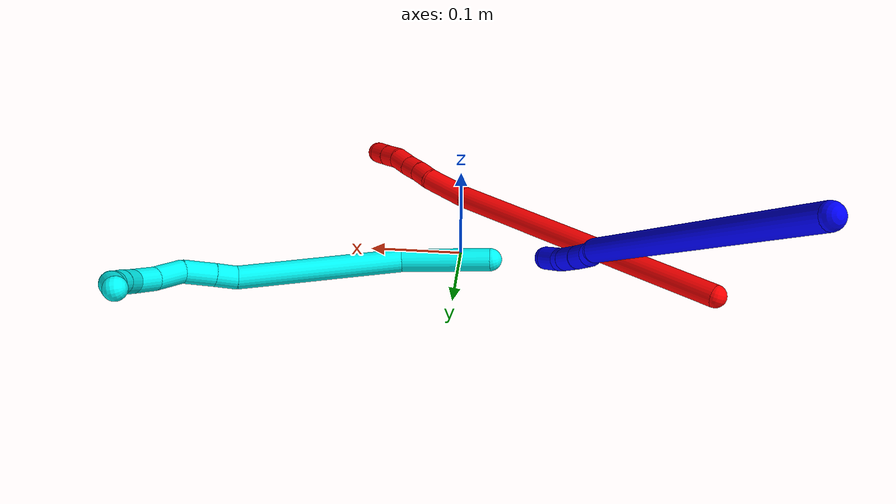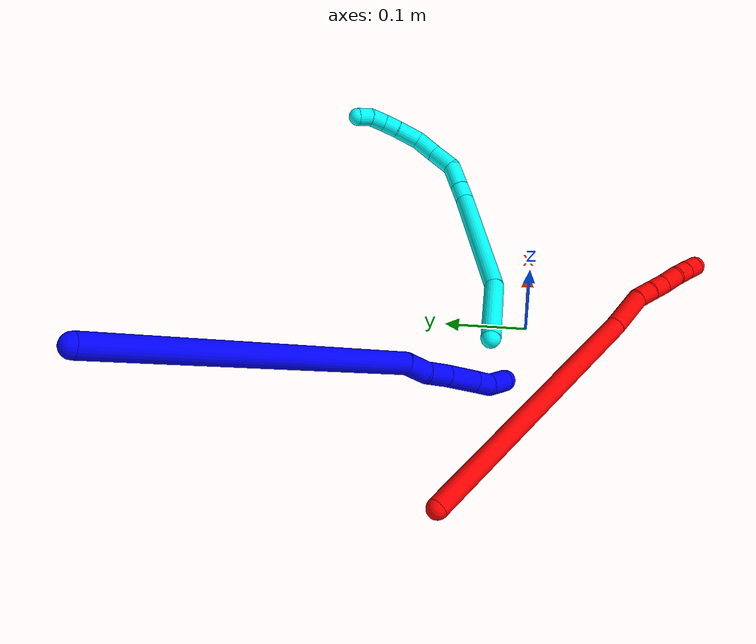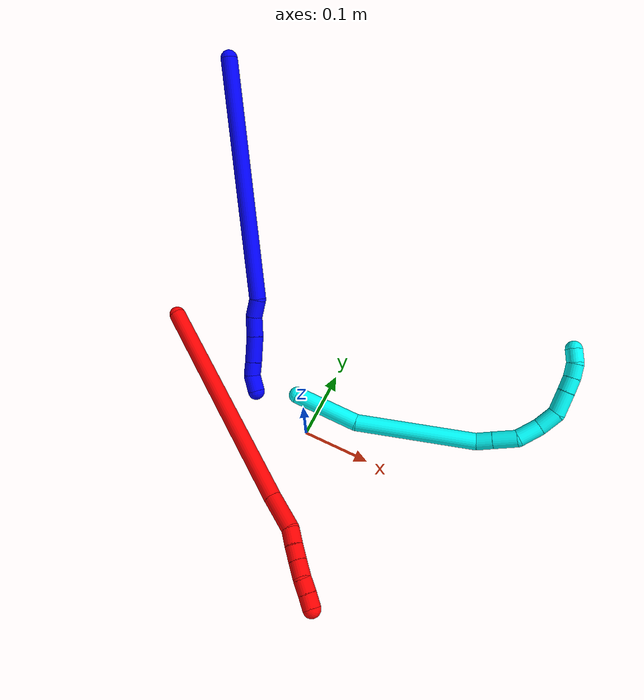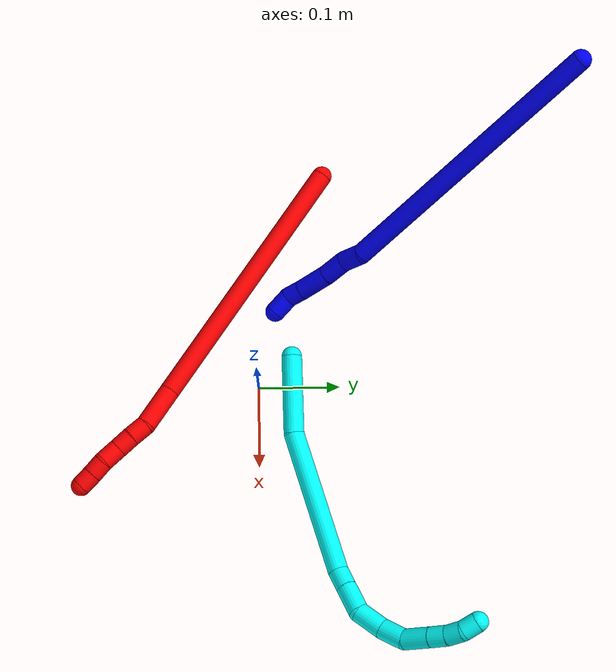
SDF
<sdf version="1.7">
 <world name="default">
  <model name="photoneo_s_sensor">
   <static>1</static>
   <pose>0 0 2 1.57079 1.57079 3.14159</pose>
   <link name="link">
    <inertial><mass>0.1</mass></inertial>
    <sensor name="sensor" type="depth">
     <update_rate>30</update_rate>
     <camera>
      <horizontal_fov>1.22</horizontal_fov>
      <image><width>1920</width><height>1200</height><format>B8G8R8</format></image>
      <clip><near>0.1</near><far>4</far></clip>
      <depth_camera><output>points</output></depth_camera>
     </camera>
     <plugin name="camera_plugin" filename="libgazebo_ros_depth_camera.so">
      <baseline>0.2</baseline>
      <alwaysOn>1</alwaysOn>
      <updateRate>0.0</updateRate>
      <cameraName>camera_ir</cameraName>
      <imageTopicName>/camera/color/image_raw</imageTopicName>
      <cameraInfoTopicName>/camera/color/camera_info</cameraInfoTopicName>
      <depthImageTopicName>/camera/depth/image_raw</depthImageTopicName>
      <depthImageCameraInfoTopicName>/camera/depth/camera_info</depthImageCameraInfoTopicName>
      <pointCloudTopicName>/camera/depth/points</pointCloudTopicName>
      <frameName>fr_optical</frameName>
      <pointCloudCutoff>0.1</pointCloudCutoff>
      <pointCloudCutoffMax>2.0</pointCloudCutoffMax>
      <distortionK1>0</distortionK1>
      <distortionK2>0</distortionK2>
      <distortionK3>0</distortionK3>
      <distortionT1>0</distortionT1>
      <distortionT2>0</distortionT2>
      <CxPrime>0</CxPrime>
      <Cx>0</Cx>
      <Cy>0</Cy>
      <focalLength>0</focalLength>
      <hackBaseline>0</hackBaseline>
     </plugin>
    </sensor>
   </link>
  </model>
  <model name="bin">
   <static>1</static>
   <link name="bottom">
    <collision name="collision-bottom">
     <pose>0 0 -0.01 0 -0 0</pose>
     <geometry><box><size>0.8 0.6 0.02</size></box></geometry>
     <surface>
      <friction><ode><mu>100</mu><mu2>100</mu2></ode></friction>
      <contact><collide_bitmask>65535</collide_bitmask></contact>
     </surface>
    </collision>
   </link>
   <link name="west_wall">
    <collision name="collision-west_wall">
     <pose>-0.41 0 0.1 0 -0 0</pose>
     <geometry><box><size>0.02 0.6 0.2</size></box></geometry>
     <surface>
      <friction><ode><mu>100</mu><mu2>100</mu2></ode></friction>
      <contact><collide_bitmask>65535</collide_bitmask></contact>
     </surface>
    </collision>
   </link>
   <link name="east_wall">
    <collision name="collision-east_wall">
     <pose>0.41 0 0.1 0 -0 0</pose>
     <geometry><box><size>0.02 0.6 0.2</size></box></geometry>
     <surface>
      <friction><ode><mu>100</mu><mu2>100</mu2></ode></friction>
      <contact><collide_bitmask>65535</collide_bitmask></contact>
     </surface>
    </collision>
   </link>
   <link name="south_wall">
    <collision name="collision-south_wall">
     <pose>0 -0.31 0.1 0 -0 0</pose>
     <geometry><box><size>0.8 0.02 0.2</size></box></geometry>
     <surface>
      <friction><ode><mu>100</mu><mu2>100</mu2></ode></friction>
      <contact><collide_bitmask>65535</collide_bitmask></contact>
     </surface>
    </collision>
   </link>
   <link name="north_wall">
    <collision name="collision-north_wall">
     <pose>0 0.31 0.1 0 -0 0</pose>
     <geometry><box><size>0.8 0.02 0.2</size></box></geometry>
     <surface>
      <friction><ode><mu>100</mu><mu2>100</mu2></ode></friction>
      <contact><collide_bitmask>65535</collide_bitmask></contact>
     </surface>
    </collision>
   </link>
  </model>
  <model name="1">
   <static>0</static>
   <link name="1">
    <collision name="collision-cylinder-e_1_1_4">
     <pose>-0.004596 0.001135 -0.178871 -3.13525 -0.025689 2.65742</pose>
     <geometry><cylinder><radius>0.0125</radius><length>0.357866</length></cylinder></geometry>
     <surface>
      <friction><ode><mu>1.16</mu><mu2>1.16</mu2><slip1>0</slip1><slip2>0</slip2></ode></friction>
      <contact><ode><kp>1e+06</kp><kd>1</kd><max_vel>0</max_vel><min_depth>0.001</min_depth></ode></contact>
     </surface>
    </collision>
    <visual name="visual-cylinder-e_1_1_4">
     <pose>-0.004596 0.001135 -0.178871 -3.13525 -0.025689 2.65742</pose>
     <geometry><cylinder><radius>0.0125</radius><length>0.357866</length></cylinder></geometry>
     <material><ambient>0 0 1 1</ambient></material>
    </visual>
    <collision name="collision-cylinder-e_2_4_5">
     <pose>-0.009905 -0.002566 -0.370569 2.78115 -0.051922 -0.28313</pose>
     <geometry><cylinder><radius>0.0125</radius><length>0.027456</length></cylinder></geometry>
     <surface>
      <friction><ode><mu>1.16</mu><mu2>1.16</mu2><slip1>0</slip1><slip2>0</slip2></ode></friction>
      <contact><ode><kp>1e+06</kp><kd>1</kd><max_vel>0</max_vel><min_depth>0.001</min_depth></ode></contact>
     </surface>
    </collision>
    <visual name="visual-cylinder-e_2_4_5">
     <pose>-0.009905 -0.002566 -0.370569 2.78115 -0.051922 -0.28313</pose>
     <geometry><cylinder><radius>0.0125</radius><length>0.027456</length></cylinder></geometry>
     <material><ambient>0 0 1 1</ambient></material>
    </visual>
    <collision name="collision-cylinder-e_3_5_6">
     <pose>-0.011227 -0.008489 -0.398178 3.06813 -0.0411 -1.01994</pose>
     <geometry><cylinder><radius>0.0125</radius><length>0.029665</length></cylinder></geometry>
     <surface>
      <friction><ode><mu>1.16</mu><mu2>1.16</mu2><slip1>0</slip1><slip2>0</slip2></ode></friction>
      <contact><ode><kp>1e+06</kp><kd>1</kd><max_vel>0</max_vel><min_depth>0.001</min_depth></ode></contact>
     </surface>
    </collision>
    <visual name="visual-cylinder-e_3_5_6">
     <pose>-0.011227 -0.008489 -0.398178 3.06813 -0.0411 -1.01994</pose>
     <geometry><cylinder><radius>0.0125</radius><length>0.029665</length></cylinder></geometry>
     <material><ambient>0 0 1 1</ambient></material>
    </visual>
    <collision name="collision-cylinder-e_4_6_7">
     <pose>-0.011521 -0.012771 -0.432223 2.97729 0.016114 0.195092</pose>
     <geometry><cylinder><radius>0.0125</radius><length>0.039061</length></cylinder></geometry>
     <surface>
      <friction><ode><mu>1.16</mu><mu2>1.16</mu2><slip1>0</slip1><slip2>0</slip2></ode></friction>
      <contact><ode><kp>1e+06</kp><kd>1</kd><max_vel>0</max_vel><min_depth>0.001</min_depth></ode></contact>
     </surface>
    </collision>
    <visual name="visual-cylinder-e_4_6_7">
     <pose>-0.011521 -0.012771 -0.432223 2.97729 0.016114 0.195092</pose>
     <geometry><cylinder><radius>0.0125</radius><length>0.039061</length></cylinder></geometry>
     <material><ambient>0 0 1 1</ambient></material>
    </visual>
    <collision name="collision-cylinder-e_5_7_8">
     <pose>-0.010749 -0.018068 -0.461751 2.93947 0.043622 0.423792</pose>
     <geometry><cylinder><radius>0.0125</radius><length>0.020972</length></cylinder></geometry>
     <surface>
      <friction><ode><mu>1.16</mu><mu2>1.16</mu2><slip1>0</slip1><slip2>0</slip2></ode></friction>
      <contact><ode><kp>1e+06</kp><kd>1</kd><max_vel>0</max_vel><min_depth>0.001</min_depth></ode></contact>
     </surface>
    </collision>
    <visual name="visual-cylinder-e_5_7_8">
     <pose>-0.010749 -0.018068 -0.461751 2.93947 0.043622 0.423792</pose>
     <geometry><cylinder><radius>0.0125</radius><length>0.020972</length></cylinder></geometry>
     <material><ambient>0 0 1 1</ambient></material>
    </visual>
    <collision name="collision-cylinder-e_6_8_2">
     <pose>-0.009274 -0.017582 -0.48419 -2.9321 0.081609 -0.740845</pose>
     <geometry><cylinder><radius>0.0125</radius><length>0.024979</length></cylinder></geometry>
     <surface>
      <friction><ode><mu>1.16</mu><mu2>1.16</mu2><slip1>0</slip1><slip2>0</slip2></ode></friction>
      <contact><ode><kp>1e+06</kp><kd>1</kd><max_vel>0</max_vel><min_depth>0.001</min_depth></ode></contact>
     </surface>
    </collision>
    <visual name="visual-cylinder-e_6_8_2">
     <pose>-0.009274 -0.017582 -0.48419 -2.9321 0.081609 -0.740845</pose>
     <geometry><cylinder><radius>0.0125</radius><length>0.024979</length></cylinder></geometry>
     <material><ambient>0 0 1 1</ambient></material>
    </visual>
    <collision name="collision-sphere-2">
     <pose>-0.008256 -0.014993 -0.496366 0 -0 0</pose>
     <geometry><sphere><radius>0.0125</radius></sphere></geometry>
     <surface>
      <friction><ode><mu>1.16</mu><mu2>1.16</mu2><slip1>0</slip1><slip2>0</slip2></ode></friction>
      <contact><ode><kp>1e+06</kp><kd>1</kd><max_vel>0</max_vel><min_depth>0.001</min_depth></ode></contact>
     </surface>
    </collision>
    <visual name="visual-sphere-2">
     <pose>-0.008256 -0.014993 -0.496366 0 -0 0</pose>
     <geometry><sphere><radius>0.0125</radius></sphere></geometry>
     <material><ambient>0 0 1 1</ambient></material>
    </visual>
    <collision name="collision-sphere-4">
     <pose>-0.009192 0.002269 -0.357741 0 -0 0</pose>
     <geometry><sphere><radius>0.0125</radius></sphere></geometry>
     <surface>
      <friction><ode><mu>1.16</mu><mu2>1.16</mu2><slip1>0</slip1><slip2>0</slip2></ode></friction>
      <contact><ode><kp>1e+06</kp><kd>1</kd><max_vel>0</max_vel><min_depth>0.001</min_depth></ode></contact>
     </surface>
    </collision>
    <visual name="visual-sphere-4">
     <pose>-0.009192 0.002269 -0.357741 0 -0 0</pose>
     <geometry><sphere><radius>0.0125</radius></sphere></geometry>
     <material><ambient>0 0 1 1</ambient></material>
    </visual>
    <collision name="collision-sphere-1">
     <geometry><sphere><radius>0.0125</radius></sphere></geometry>
     <surface>
      <friction><ode><mu>1.16</mu><mu2>1.16</mu2><slip1>0</slip1><slip2>0</slip2></ode></friction>
      <contact><ode><kp>1e+06</kp><kd>1</kd><max_vel>0</max_vel><min_depth>0.001</min_depth></ode></contact>
     </surface>
    </collision>
    <visual name="visual-sphere-1">
     <geometry><sphere><radius>0.0125</radius></sphere></geometry>
     <material><ambient>0 0 1 1</ambient></material>
    </visual>
    <collision name="collision-sphere-8">
     <pose>-0.010292 -0.020171 -0.472014 0 -0 0</pose>
     <geometry><sphere><radius>0.0125</radius></sphere></geometry>
     <surface>
      <friction><ode><mu>1.16</mu><mu2>1.16</mu2><slip1>0</slip1><slip2>0</slip2></ode></friction>
      <contact><ode><kp>1e+06</kp><kd>1</kd><max_vel>0</max_vel><min_depth>0.001</min_depth></ode></contact>
     </surface>
    </collision>
    <visual name="visual-sphere-8">
     <pose>-0.010292 -0.020171 -0.472014 0 -0 0</pose>
     <geometry><sphere><radius>0.0125</radius></sphere></geometry>
     <material><ambient>0 0 1 1</ambient></material>
    </visual>
    <collision name="collision-sphere-5">
     <pose>-0.010617 -0.007401 -0.383398 0 -0 0</pose>
     <geometry><sphere><radius>0.0125</radius></sphere></geometry>
     <surface>
      <friction><ode><mu>1.16</mu><mu2>1.16</mu2><slip1>0</slip1><slip2>0</slip2></ode></friction>
      <contact><ode><kp>1e+06</kp><kd>1</kd><max_vel>0</max_vel><min_depth>0.001</min_depth></ode></contact>
     </surface>
    </collision>
    <visual name="visual-sphere-5">
     <pose>-0.010617 -0.007401 -0.383398 0 -0 0</pose>
     <geometry><sphere><radius>0.0125</radius></sphere></geometry>
     <material><ambient>0 0 1 1</ambient></material>
    </visual>
    <collision name="collision-sphere-6">
     <pose>-0.011836 -0.009576 -0.412958 0 -0 0</pose>
     <geometry><sphere><radius>0.0125</radius></sphere></geometry>
     <surface>
      <friction><ode><mu>1.16</mu><mu2>1.16</mu2><slip1>0</slip1><slip2>0</slip2></ode></friction>
      <contact><ode><kp>1e+06</kp><kd>1</kd><max_vel>0</max_vel><min_depth>0.001</min_depth></ode></contact>
     </surface>
    </collision>
    <visual name="visual-sphere-6">
     <pose>-0.011836 -0.009576 -0.412958 0 -0 0</pose>
     <geometry><sphere><radius>0.0125</radius></sphere></geometry>
     <material><ambient>0 0 1 1</ambient></material>
    </visual>
    <collision name="collision-sphere-7">
     <pose>-0.011207 -0.015965 -0.451489 0 -0 0</pose>
     <geometry><sphere><radius>0.0125</radius></sphere></geometry>
     <surface>
      <friction><ode><mu>1.16</mu><mu2>1.16</mu2><slip1>0</slip1><slip2>0</slip2></ode></friction>
      <contact><ode><kp>1e+06</kp><kd>1</kd><max_vel>0</max_vel><min_depth>0.001</min_depth></ode></contact>
     </surface>
    </collision>
    <visual name="visual-sphere-7">
     <pose>-0.011207 -0.015965 -0.451489 0 -0 0</pose>
     <geometry><sphere><radius>0.0125</radius></sphere></geometry>
     <material><ambient>0 0 1 1</ambient></material>
    </visual>
    <inertial>
     <pose>-0.006314 -0.002466 -0.24932 0 -0 0</pose>
     <mass>0.5</mass>
     <inertia>
      <ixx>-0.001598</ixx>
      <ixy>0</ixy>
      <ixz>0</ixz>
      <iyy>0.005159</iyy>
      <iyz>0</iyz>
      <izz>3.7e-05</izz>
     </inertia>
    </inertial>
   </link>
   <pose>-0.314417 0.381434 0.274968 0.559325 -0.928527 -1.66233</pose>
  </model>
  <model name="2">
   <static>0</static>
   <link name="2">
    <collision name="collision-cylinder-e_1_1_4">
     <pose>0.137493 -0.098768 -0.004996 1.62133 0.947257 0.988901</pose>
     <geometry><cylinder><radius>0.0125</radius><length>0.338729</length></cylinder></geometry>
     <surface>
      <friction><ode><mu>1.16</mu><mu2>1.16</mu2><slip1>0</slip1><slip2>0</slip2></ode></friction>
      <contact><ode><kp>1e+06</kp><kd>1</kd><max_vel>0</max_vel><min_depth>0.001</min_depth></ode></contact>
     </surface>
    </collision>
    <visual name="visual-cylinder-e_1_1_4">
     <pose>0.137493 -0.098768 -0.004996 1.62133 0.947257 0.988901</pose>
     <geometry><cylinder><radius>0.0125</radius><length>0.338729</length></cylinder></geometry>
     <material><ambient>1 0 0 1</ambient></material>
    </visual>
    <collision name="collision-cylinder-e_2_4_5">
     <pose>0.297599 -0.21104 -0.008042 1.42745 1.02789 0.90948</pose>
     <geometry><cylinder><radius>0.0125</radius><length>0.05282</length></cylinder></geometry>
     <surface>
      <friction><ode><mu>1.16</mu><mu2>1.16</mu2><slip1>0</slip1><slip2>0</slip2></ode></friction>
      <contact><ode><kp>1e+06</kp><kd>1</kd><max_vel>0</max_vel><min_depth>0.001</min_depth></ode></contact>
     </surface>
    </collision>
    <visual name="visual-cylinder-e_2_4_5">
     <pose>0.297599 -0.21104 -0.008042 1.42745 1.02789 0.90948</pose>
     <geometry><cylinder><radius>0.0125</radius><length>0.05282</length></cylinder></geometry>
     <material><ambient>1 0 0 1</ambient></material>
    </visual>
    <collision name="collision-cylinder-e_3_5_6">
     <pose>0.327749 -0.233285 -0.004858 1.43046 0.706718 0.620126</pose>
     <geometry><cylinder><radius>0.0125</radius><length>0.023216</length></cylinder></geometry>
     <surface>
      <friction><ode><mu>1.16</mu><mu2>1.16</mu2><slip1>0</slip1><slip2>0</slip2></ode></friction>
      <contact><ode><kp>1e+06</kp><kd>1</kd><max_vel>0</max_vel><min_depth>0.001</min_depth></ode></contact>
     </surface>
    </collision>
    <visual name="visual-cylinder-e_3_5_6">
     <pose>0.327749 -0.233285 -0.004858 1.43046 0.706718 0.620126</pose>
     <geometry><cylinder><radius>0.0125</radius><length>0.023216</length></cylinder></geometry>
     <material><ambient>1 0 0 1</ambient></material>
    </visual>
    <collision name="collision-cylinder-e_4_6_7">
     <pose>0.342283 -0.250117 -0.003264 1.52644 0.712513 0.683994</pose>
     <geometry><cylinder><radius>0.0125</radius><length>0.021406</length></cylinder></geometry>
     <surface>
      <friction><ode><mu>1.16</mu><mu2>1.16</mu2><slip1>0</slip1><slip2>0</slip2></ode></friction>
      <contact><ode><kp>1e+06</kp><kd>1</kd><max_vel>0</max_vel><min_depth>0.001</min_depth></ode></contact>
     </surface>
    </collision>
    <visual name="visual-cylinder-e_4_6_7">
     <pose>0.342283 -0.250117 -0.003264 1.52644 0.712513 0.683994</pose>
     <geometry><cylinder><radius>0.0125</radius><length>0.021406</length></cylinder></geometry>
     <material><ambient>1 0 0 1</ambient></material>
    </visual>
    <collision name="collision-cylinder-e_5_7_8">
     <pose>0.357503 -0.266652 -0.001438 1.39878 0.764711 0.652435</pose>
     <geometry><cylinder><radius>0.0125</radius><length>0.023755</length></cylinder></geometry>
     <surface>
      <friction><ode><mu>1.16</mu><mu2>1.16</mu2><slip1>0</slip1><slip2>0</slip2></ode></friction>
      <contact><ode><kp>1e+06</kp><kd>1</kd><max_vel>0</max_vel><min_depth>0.001</min_depth></ode></contact>
     </surface>
    </collision>
    <visual name="visual-cylinder-e_5_7_8">
     <pose>0.357503 -0.266652 -0.001438 1.39878 0.764711 0.652435</pose>
     <geometry><cylinder><radius>0.0125</radius><length>0.023755</length></cylinder></geometry>
     <material><ambient>1 0 0 1</ambient></material>
    </visual>
    <collision name="collision-cylinder-e_6_8_9">
     <pose>0.372372 -0.28247 -0.001247 1.74215 0.726235 0.847982</pose>
     <geometry><cylinder><radius>0.0125</radius><length>0.020017</length></cylinder></geometry>
     <surface>
      <friction><ode><mu>1.16</mu><mu2>1.16</mu2><slip1>0</slip1><slip2>0</slip2></ode></friction>
      <contact><ode><kp>1e+06</kp><kd>1</kd><max_vel>0</max_vel><min_depth>0.001</min_depth></ode></contact>
     </surface>
    </collision>
    <visual name="visual-cylinder-e_6_8_9">
     <pose>0.372372 -0.28247 -0.001247 1.74215 0.726235 0.847982</pose>
     <geometry><cylinder><radius>0.0125</radius><length>0.020017</length></cylinder></geometry>
     <material><ambient>1 0 0 1</ambient></material>
    </visual>
    <collision name="collision-cylinder-e_7_9_2">
     <pose>0.385453 -0.297471 -0.003517 1.70039 0.696657 0.784232</pose>
     <geometry><cylinder><radius>0.0125</radius><length>0.020058</length></cylinder></geometry>
     <surface>
      <friction><ode><mu>1.16</mu><mu2>1.16</mu2><slip1>0</slip1><slip2>0</slip2></ode></friction>
      <contact><ode><kp>1e+06</kp><kd>1</kd><max_vel>0</max_vel><min_depth>0.001</min_depth></ode></contact>
     </surface>
    </collision>
    <visual name="visual-cylinder-e_7_9_2">
     <pose>0.385453 -0.297471 -0.003517 1.70039 0.696657 0.784232</pose>
     <geometry><cylinder><radius>0.0125</radius><length>0.020058</length></cylinder></geometry>
     <material><ambient>1 0 0 1</ambient></material>
    </visual>
    <collision name="collision-sphere-2">
     <pose>0.391888 -0.305098 -0.004511 0 -0 0</pose>
     <geometry><sphere><radius>0.0125</radius></sphere></geometry>
     <surface>
      <friction><ode><mu>1.16</mu><mu2>1.16</mu2><slip1>0</slip1><slip2>0</slip2></ode></friction>
      <contact><ode><kp>1e+06</kp><kd>1</kd><max_vel>0</max_vel><min_depth>0.001</min_depth></ode></contact>
     </surface>
    </collision>
    <visual name="visual-sphere-2">
     <pose>0.391888 -0.305098 -0.004511 0 -0 0</pose>
     <geometry><sphere><radius>0.0125</radius></sphere></geometry>
     <material><ambient>1 0 0 1</ambient></material>
    </visual>
    <collision name="collision-sphere-9">
     <pose>0.379018 -0.289843 -0.002523 0 -0 0</pose>
     <geometry><sphere><radius>0.0125</radius></sphere></geometry>
     <surface>
      <friction><ode><mu>1.16</mu><mu2>1.16</mu2><slip1>0</slip1><slip2>0</slip2></ode></friction>
      <contact><ode><kp>1e+06</kp><kd>1</kd><max_vel>0</max_vel><min_depth>0.001</min_depth></ode></contact>
     </surface>
    </collision>
    <visual name="visual-sphere-9">
     <pose>0.379018 -0.289843 -0.002523 0 -0 0</pose>
     <geometry><sphere><radius>0.0125</radius></sphere></geometry>
     <material><ambient>1 0 0 1</ambient></material>
    </visual>
    <collision name="collision-sphere-4">
     <pose>0.274986 -0.197536 -0.009991 0 -0 0</pose>
     <geometry><sphere><radius>0.0125</radius></sphere></geometry>
     <surface>
      <friction><ode><mu>1.16</mu><mu2>1.16</mu2><slip1>0</slip1><slip2>0</slip2></ode></friction>
      <contact><ode><kp>1e+06</kp><kd>1</kd><max_vel>0</max_vel><min_depth>0.001</min_depth></ode></contact>
     </surface>
    </collision>
    <visual name="visual-sphere-4">
     <pose>0.274986 -0.197536 -0.009991 0 -0 0</pose>
     <geometry><sphere><radius>0.0125</radius></sphere></geometry>
     <material><ambient>1 0 0 1</ambient></material>
    </visual>
    <collision name="collision-sphere-1">
     <geometry><sphere><radius>0.0125</radius></sphere></geometry>
     <surface>
      <friction><ode><mu>1.16</mu><mu2>1.16</mu2><slip1>0</slip1><slip2>0</slip2></ode></friction>
      <contact><ode><kp>1e+06</kp><kd>1</kd><max_vel>0</max_vel><min_depth>0.001</min_depth></ode></contact>
     </surface>
    </collision>
    <visual name="visual-sphere-1">
     <geometry><sphere><radius>0.0125</radius></sphere></geometry>
     <material><ambient>1 0 0 1</ambient></material>
    </visual>
    <collision name="collision-sphere-8">
     <pose>0.365726 -0.275096 2.9e-05 0 -0 0</pose>
     <geometry><sphere><radius>0.0125</radius></sphere></geometry>
     <surface>
      <friction><ode><mu>1.16</mu><mu2>1.16</mu2><slip1>0</slip1><slip2>0</slip2></ode></friction>
      <contact><ode><kp>1e+06</kp><kd>1</kd><max_vel>0</max_vel><min_depth>0.001</min_depth></ode></contact>
     </surface>
    </collision>
    <visual name="visual-sphere-8">
     <pose>0.365726 -0.275096 2.9e-05 0 -0 0</pose>
     <geometry><sphere><radius>0.0125</radius></sphere></geometry>
     <material><ambient>1 0 0 1</ambient></material>
    </visual>
    <collision name="collision-sphere-5">
     <pose>0.320211 -0.224544 -0.006093 0 -0 0</pose>
     <geometry><sphere><radius>0.0125</radius></sphere></geometry>
     <surface>
      <friction><ode><mu>1.16</mu><mu2>1.16</mu2><slip1>0</slip1><slip2>0</slip2></ode></friction>
      <contact><ode><kp>1e+06</kp><kd>1</kd><max_vel>0</max_vel><min_depth>0.001</min_depth></ode></contact>
     </surface>
    </collision>
    <visual name="visual-sphere-5">
     <pose>0.320211 -0.224544 -0.006093 0 -0 0</pose>
     <geometry><sphere><radius>0.0125</radius></sphere></geometry>
     <material><ambient>1 0 0 1</ambient></material>
    </visual>
    <collision name="collision-sphere-6">
     <pose>0.335286 -0.242026 -0.003624 0 -0 0</pose>
     <geometry><sphere><radius>0.0125</radius></sphere></geometry>
     <surface>
      <friction><ode><mu>1.16</mu><mu2>1.16</mu2><slip1>0</slip1><slip2>0</slip2></ode></friction>
      <contact><ode><kp>1e+06</kp><kd>1</kd><max_vel>0</max_vel><min_depth>0.001</min_depth></ode></contact>
     </surface>
    </collision>
    <visual name="visual-sphere-6">
     <pose>0.335286 -0.242026 -0.003624 0 -0 0</pose>
     <geometry><sphere><radius>0.0125</radius></sphere></geometry>
     <material><ambient>1 0 0 1</ambient></material>
    </visual>
    <collision name="collision-sphere-7">
     <pose>0.34928 -0.258208 -0.002905 0 -0 0</pose>
     <geometry><sphere><radius>0.0125</radius></sphere></geometry>
     <surface>
      <friction><ode><mu>1.16</mu><mu2>1.16</mu2><slip1>0</slip1><slip2>0</slip2></ode></friction>
      <contact><ode><kp>1e+06</kp><kd>1</kd><max_vel>0</max_vel><min_depth>0.001</min_depth></ode></contact>
     </surface>
    </collision>
    <visual name="visual-sphere-7">
     <pose>0.34928 -0.258208 -0.002905 0 -0 0</pose>
     <geometry><sphere><radius>0.0125</radius></sphere></geometry>
     <material><ambient>1 0 0 1</ambient></material>
    </visual>
    <inertial>
     <pose>0.201811 -0.146655 -0.004859 0 -0 0</pose>
     <mass>0.5</mass>
     <inertia><ixx>0.00268</ixx><ixy>0</ixy><ixz>0</ixz><iyy>0.0037</iyy><iyz>0</iyz><izz>-0.000748</izz></inertia>
    </inertial>
   </link>
   <pose>-0.274436 0.082087 0.011499 0.383127 -0.293484 -0.043976</pose>
  </model>
  <model name="3">
   <static>0</static>
   <link name="3">
    <collision name="collision-cylinder-e_1_1_4">
     <pose>0.003301 0.005956 0.048048 -0.12334 0.068072 -0.004205</pose>
     <geometry><cylinder><radius>0.0125</radius><length>0.097057</length></cylinder></geometry>
     <surface>
      <friction><ode><mu>1.16</mu><mu2>1.16</mu2><slip1>0</slip1><slip2>0</slip2></ode></friction>
      <contact><ode><kp>1e+06</kp><kd>1</kd><max_vel>0</max_vel><min_depth>0.001</min_depth></ode></contact>
     </surface>
    </collision>
    <visual name="visual-cylinder-e_1_1_4">
     <pose>0.003301 0.005956 0.048048 -0.12334 0.068072 -0.004205</pose>
     <geometry><cylinder><radius>0.0125</radius><length>0.097057</length></cylinder></geometry>
     <material><ambient>0.003922 1 0.996078 1</ambient></material>
    </visual>
    <collision name="collision-cylinder-e_2_4_5">
     <pose>0.033647 0.009566 0.181059 0.027616 0.308064 0.004288</pose>
     <geometry><cylinder><radius>0.0125</radius><length>0.178389</length></cylinder></geometry>
     <surface>
      <friction><ode><mu>1.16</mu><mu2>1.16</mu2><slip1>0</slip1><slip2>0</slip2></ode></friction>
      <contact><ode><kp>1e+06</kp><kd>1</kd><max_vel>0</max_vel><min_depth>0.001</min_depth></ode></contact>
     </surface>
    </collision>
    <visual name="visual-cylinder-e_2_4_5">
     <pose>0.033647 0.009566 0.181059 0.027616 0.308064 0.004288</pose>
     <geometry><cylinder><radius>0.0125</radius><length>0.178389</length></cylinder></geometry>
     <material><ambient>0.003922 1 0.996078 1</ambient></material>
    </visual>
    <collision name="collision-cylinder-e_3_5_6">
     <pose>0.067952 0.008804 0.275861 -0.159735 0.629638 -0.052117</pose>
     <geometry><cylinder><radius>0.0125</radius><length>0.02466</length></cylinder></geometry>
     <surface>
      <friction><ode><mu>1.16</mu><mu2>1.16</mu2><slip1>0</slip1><slip2>0</slip2></ode></friction>
      <contact><ode><kp>1e+06</kp><kd>1</kd><max_vel>0</max_vel><min_depth>0.001</min_depth></ode></contact>
     </surface>
    </collision>
    <visual name="visual-cylinder-e_3_5_6">
     <pose>0.067952 0.008804 0.275861 -0.159735 0.629638 -0.052117</pose>
     <geometry><cylinder><radius>0.0125</radius><length>0.02466</length></cylinder></geometry>
     <material><ambient>0.003922 1 0.996078 1</ambient></material>
    </visual>
    <collision name="collision-cylinder-e_4_6_7">
     <pose>0.085364 0.012384 0.299953 -0.139027 0.614271 -0.044159</pose>
     <geometry><cylinder><radius>0.0125</radius><length>0.035223</length></cylinder></geometry>
     <surface>
      <friction><ode><mu>1.16</mu><mu2>1.16</mu2><slip1>0</slip1><slip2>0</slip2></ode></friction>
      <contact><ode><kp>1e+06</kp><kd>1</kd><max_vel>0</max_vel><min_depth>0.001</min_depth></ode></contact>
     </surface>
    </collision>
    <visual name="visual-cylinder-e_4_6_7">
     <pose>0.085364 0.012384 0.299953 -0.139027 0.614271 -0.044159</pose>
     <geometry><cylinder><radius>0.0125</radius><length>0.035223</length></cylinder></geometry>
     <material><ambient>0.003922 1 0.996078 1</ambient></material>
    </visual>
    <collision name="collision-cylinder-e_5_7_8">
     <pose>0.108814 0.009458 0.324703 0.438315 0.853849 0.201957</pose>
     <geometry><cylinder><radius>0.0125</radius><length>0.035287</length></cylinder></geometry>
     <surface>
      <friction><ode><mu>1.16</mu><mu2>1.16</mu2><slip1>0</slip1><slip2>0</slip2></ode></friction>
      <contact><ode><kp>1e+06</kp><kd>1</kd><max_vel>0</max_vel><min_depth>0.001</min_depth></ode></contact>
     </surface>
    </collision>
    <visual name="visual-cylinder-e_5_7_8">
     <pose>0.108814 0.009458 0.324703 0.438315 0.853849 0.201957</pose>
     <geometry><cylinder><radius>0.0125</radius><length>0.035287</length></cylinder></geometry>
     <material><ambient>0.003922 1 0.996078 1</ambient></material>
    </visual>
    <collision name="collision-cylinder-e_6_8_9">
     <pose>0.13602 0.001541 0.341856 0.423115 1.08745 0.258216</pose>
     <geometry><cylinder><radius>0.0125</radius><length>0.031409</length></cylinder></geometry>
     <surface>
      <friction><ode><mu>1.16</mu><mu2>1.16</mu2><slip1>0</slip1><slip2>0</slip2></ode></friction>
      <contact><ode><kp>1e+06</kp><kd>1</kd><max_vel>0</max_vel><min_depth>0.001</min_depth></ode></contact>
     </surface>
    </collision>
    <visual name="visual-cylinder-e_6_8_9">
     <pose>0.13602 0.001541 0.341856 0.423115 1.08745 0.258216</pose>
     <geometry><cylinder><radius>0.0125</radius><length>0.031409</length></cylinder></geometry>
     <material><ambient>0.003922 1 0.996078 1</ambient></material>
    </visual>
    <collision name="collision-cylinder-e_7_9_10">
     <pose>0.166862 -0.005062 0.347535 1.83494 1.3537 1.61922</pose>
     <geometry><cylinder><radius>0.0125</radius><length>0.034687</length></cylinder></geometry>
     <surface>
      <friction><ode><mu>1.16</mu><mu2>1.16</mu2><slip1>0</slip1><slip2>0</slip2></ode></friction>
      <contact><ode><kp>1e+06</kp><kd>1</kd><max_vel>0</max_vel><min_depth>0.001</min_depth></ode></contact>
     </surface>
    </collision>
    <visual name="visual-cylinder-e_7_9_10">
     <pose>0.166862 -0.005062 0.347535 1.83494 1.3537 1.61922</pose>
     <geometry><cylinder><radius>0.0125</radius><length>0.034687</length></cylinder></geometry>
     <material><ambient>0.003922 1 0.996078 1</ambient></material>
    </visual>
    <collision name="collision-cylinder-e_8_10_11">
     <pose>0.194413 -0.01143 0.345846 1.82393 1.30829 1.5611</pose>
     <geometry><cylinder><radius>0.0125</radius><length>0.021983</length></cylinder></geometry>
     <surface>
      <friction><ode><mu>1.16</mu><mu2>1.16</mu2><slip1>0</slip1><slip2>0</slip2></ode></friction>
      <contact><ode><kp>1e+06</kp><kd>1</kd><max_vel>0</max_vel><min_depth>0.001</min_depth></ode></contact>
     </surface>
    </collision>
    <visual name="visual-cylinder-e_8_10_11">
     <pose>0.194413 -0.01143 0.345846 1.82393 1.30829 1.5611</pose>
     <geometry><cylinder><radius>0.0125</radius><length>0.021983</length></cylinder></geometry>
     <material><ambient>0.003922 1 0.996078 1</ambient></material>
    </visual>
    <collision name="collision-cylinder-e_9_11_12">
     <pose>0.215039 -0.016379 0.342605 2.42802 1.24861 2.18667</pose>
     <geometry><cylinder><radius>0.0125</radius><length>0.021108</length></cylinder></geometry>
     <surface>
      <friction><ode><mu>1.16</mu><mu2>1.16</mu2><slip1>0</slip1><slip2>0</slip2></ode></friction>
      <contact><ode><kp>1e+06</kp><kd>1</kd><max_vel>0</max_vel><min_depth>0.001</min_depth></ode></contact>
     </surface>
    </collision>
    <visual name="visual-cylinder-e_9_11_12">
     <pose>0.215039 -0.016379 0.342605 2.42802 1.24861 2.18667</pose>
     <geometry><cylinder><radius>0.0125</radius><length>0.021108</length></cylinder></geometry>
     <material><ambient>0.003922 1 0.996078 1</ambient></material>
    </visual>
    <collision name="collision-cylinder-e_10_12_2">
     <pose>0.232789 -0.023035 0.335376 2.38172 0.87319 1.7259</pose>
     <geometry><cylinder><radius>0.0125</radius><length>0.020198</length></cylinder></geometry>
     <surface>
      <friction><ode><mu>1.16</mu><mu2>1.16</mu2><slip1>0</slip1><slip2>0</slip2></ode></friction>
      <contact><ode><kp>1e+06</kp><kd>1</kd><max_vel>0</max_vel><min_depth>0.001</min_depth></ode></contact>
     </surface>
    </collision>
    <visual name="visual-cylinder-e_10_12_2">
     <pose>0.232789 -0.023035 0.335376 2.38172 0.87319 1.7259</pose>
     <geometry><cylinder><radius>0.0125</radius><length>0.020198</length></cylinder></geometry>
     <material><ambient>0.003922 1 0.996078 1</ambient></material>
    </visual>
    <collision name="collision-sphere-2">
     <pose>0.240528 -0.027503 0.330673 0 -0 0</pose>
     <geometry><sphere><radius>0.0125</radius></sphere></geometry>
     <surface>
      <friction><ode><mu>1.16</mu><mu2>1.16</mu2><slip1>0</slip1><slip2>0</slip2></ode></friction>
      <contact><ode><kp>1e+06</kp><kd>1</kd><max_vel>0</max_vel><min_depth>0.001</min_depth></ode></contact>
     </surface>
    </collision>
    <visual name="visual-sphere-2">
     <pose>0.240528 -0.027503 0.330673 0 -0 0</pose>
     <geometry><sphere><radius>0.0125</radius></sphere></geometry>
     <material><ambient>0.003922 1 0.996078 1</ambient></material>
    </visual>
    <collision name="collision-sphere-12">
     <pose>0.225049 -0.018566 0.340078 0 -0 0</pose>
     <geometry><sphere><radius>0.0125</radius></sphere></geometry>
     <surface>
      <friction><ode><mu>1.16</mu><mu2>1.16</mu2><slip1>0</slip1><slip2>0</slip2></ode></friction>
      <contact><ode><kp>1e+06</kp><kd>1</kd><max_vel>0</max_vel><min_depth>0.001</min_depth></ode></contact>
     </surface>
    </collision>
    <visual name="visual-sphere-12">
     <pose>0.225049 -0.018566 0.340078 0 -0 0</pose>
     <geometry><sphere><radius>0.0125</radius></sphere></geometry>
     <material><ambient>0.003922 1 0.996078 1</ambient></material>
    </visual>
    <collision name="collision-sphere-11">
     <pose>0.205028 -0.014191 0.345131 0 -0 0</pose>
     <geometry><sphere><radius>0.0125</radius></sphere></geometry>
     <surface>
      <friction><ode><mu>1.16</mu><mu2>1.16</mu2><slip1>0</slip1><slip2>0</slip2></ode></friction>
      <contact><ode><kp>1e+06</kp><kd>1</kd><max_vel>0</max_vel><min_depth>0.001</min_depth></ode></contact>
     </surface>
    </collision>
    <visual name="visual-sphere-11">
     <pose>0.205028 -0.014191 0.345131 0 -0 0</pose>
     <geometry><sphere><radius>0.0125</radius></sphere></geometry>
     <material><ambient>0.003922 1 0.996078 1</ambient></material>
    </visual>
    <collision name="collision-sphere-10">
     <pose>0.183798 -0.008668 0.34656 0 -0 0</pose>
     <geometry><sphere><radius>0.0125</radius></sphere></geometry>
     <surface>
      <friction><ode><mu>1.16</mu><mu2>1.16</mu2><slip1>0</slip1><slip2>0</slip2></ode></friction>
      <contact><ode><kp>1e+06</kp><kd>1</kd><max_vel>0</max_vel><min_depth>0.001</min_depth></ode></contact>
     </surface>
    </collision>
    <visual name="visual-sphere-10">
     <pose>0.183798 -0.008668 0.34656 0 -0 0</pose>
     <geometry><sphere><radius>0.0125</radius></sphere></geometry>
     <material><ambient>0.003922 1 0.996078 1</ambient></material>
    </visual>
    <collision name="collision-sphere-9">
     <pose>0.149925 -0.001456 0.348511 0 -0 0</pose>
     <geometry><sphere><radius>0.0125</radius></sphere></geometry>
     <surface>
      <friction><ode><mu>1.16</mu><mu2>1.16</mu2><slip1>0</slip1><slip2>0</slip2></ode></friction>
      <contact><ode><kp>1e+06</kp><kd>1</kd><max_vel>0</max_vel><min_depth>0.001</min_depth></ode></contact>
     </surface>
    </collision>
    <visual name="visual-sphere-9">
     <pose>0.149925 -0.001456 0.348511 0 -0 0</pose>
     <geometry><sphere><radius>0.0125</radius></sphere></geometry>
     <material><ambient>0.003922 1 0.996078 1</ambient></material>
    </visual>
    <collision name="collision-sphere-4">
     <pose>0.006602 0.011913 0.096096 0 -0 0</pose>
     <geometry><sphere><radius>0.0125</radius></sphere></geometry>
     <surface>
      <friction><ode><mu>1.16</mu><mu2>1.16</mu2><slip1>0</slip1><slip2>0</slip2></ode></friction>
      <contact><ode><kp>1e+06</kp><kd>1</kd><max_vel>0</max_vel><min_depth>0.001</min_depth></ode></contact>
     </surface>
    </collision>
    <visual name="visual-sphere-4">
     <pose>0.006602 0.011913 0.096096 0 -0 0</pose>
     <geometry><sphere><radius>0.0125</radius></sphere></geometry>
     <material><ambient>0.003922 1 0.996078 1</ambient></material>
    </visual>
    <collision name="collision-sphere-1">
     <geometry><sphere><radius>0.0125</radius></sphere></geometry>
     <surface>
      <friction><ode><mu>1.16</mu><mu2>1.16</mu2><slip1>0</slip1><slip2>0</slip2></ode></friction>
      <contact><ode><kp>1e+06</kp><kd>1</kd><max_vel>0</max_vel><min_depth>0.001</min_depth></ode></contact>
     </surface>
    </collision>
    <visual name="visual-sphere-1">
     <geometry><sphere><radius>0.0125</radius></sphere></geometry>
     <material><ambient>0.003922 1 0.996078 1</ambient></material>
    </visual>
    <collision name="collision-sphere-8">
     <pose>0.122114 0.004537 0.335201 0 -0 0</pose>
     <geometry><sphere><radius>0.0125</radius></sphere></geometry>
     <surface>
      <friction><ode><mu>1.16</mu><mu2>1.16</mu2><slip1>0</slip1><slip2>0</slip2></ode></friction>
      <contact><ode><kp>1e+06</kp><kd>1</kd><max_vel>0</max_vel><min_depth>0.001</min_depth></ode></contact>
     </surface>
    </collision>
    <visual name="visual-sphere-8">
     <pose>0.122114 0.004537 0.335201 0 -0 0</pose>
     <geometry><sphere><radius>0.0125</radius></sphere></geometry>
     <material><ambient>0.003922 1 0.996078 1</ambient></material>
    </visual>
    <collision name="collision-sphere-5">
     <pose>0.060692 0.007219 0.266022 0 -0 0</pose>
     <geometry><sphere><radius>0.0125</radius></sphere></geometry>
     <surface>
      <friction><ode><mu>1.16</mu><mu2>1.16</mu2><slip1>0</slip1><slip2>0</slip2></ode></friction>
      <contact><ode><kp>1e+06</kp><kd>1</kd><max_vel>0</max_vel><min_depth>0.001</min_depth></ode></contact>
     </surface>
    </collision>
    <visual name="visual-sphere-5">
     <pose>0.060692 0.007219 0.266022 0 -0 0</pose>
     <geometry><sphere><radius>0.0125</radius></sphere></geometry>
     <material><ambient>0.003922 1 0.996078 1</ambient></material>
    </visual>
    <collision name="collision-sphere-6">
     <pose>0.075213 0.010389 0.2857 0 -0 0</pose>
     <geometry><sphere><radius>0.0125</radius></sphere></geometry>
     <surface>
      <friction><ode><mu>1.16</mu><mu2>1.16</mu2><slip1>0</slip1><slip2>0</slip2></ode></friction>
      <contact><ode><kp>1e+06</kp><kd>1</kd><max_vel>0</max_vel><min_depth>0.001</min_depth></ode></contact>
     </surface>
    </collision>
    <visual name="visual-sphere-6">
     <pose>0.075213 0.010389 0.2857 0 -0 0</pose>
     <geometry><sphere><radius>0.0125</radius></sphere></geometry>
     <material><ambient>0.003922 1 0.996078 1</ambient></material>
    </visual>
    <collision name="collision-sphere-7">
     <pose>0.095514 0.014378 0.314206 0 -0 0</pose>
     <geometry><sphere><radius>0.0125</radius></sphere></geometry>
     <surface>
      <friction><ode><mu>1.16</mu><mu2>1.16</mu2><slip1>0</slip1><slip2>0</slip2></ode></friction>
      <contact><ode><kp>1e+06</kp><kd>1</kd><max_vel>0</max_vel><min_depth>0.001</min_depth></ode></contact>
     </surface>
    </collision>
    <visual name="visual-sphere-7">
     <pose>0.095514 0.014378 0.314206 0 -0 0</pose>
     <geometry><sphere><radius>0.0125</radius></sphere></geometry>
     <material><ambient>0.003922 1 0.996078 1</ambient></material>
    </visual>
    <inertial>
     <pose>0.076839 0.004164 0.220377 0 -0 0</pose>
     <mass>0.5</mass>
     <inertia>
      <ixx>0.000572</ixx>
      <ixy>0</ixy>
      <ixz>0</ixz>
      <iyy>0.000587</iyy>
      <iyz>0</iyz>
      <izz>-0.000139</izz>
     </inertia>
    </inertial>
   </link>
   <pose>-0.035822 0.041514 0.017889 1.83483 -0.724231 1.44264</pose>
  </model>
 </world>
</sdf>
